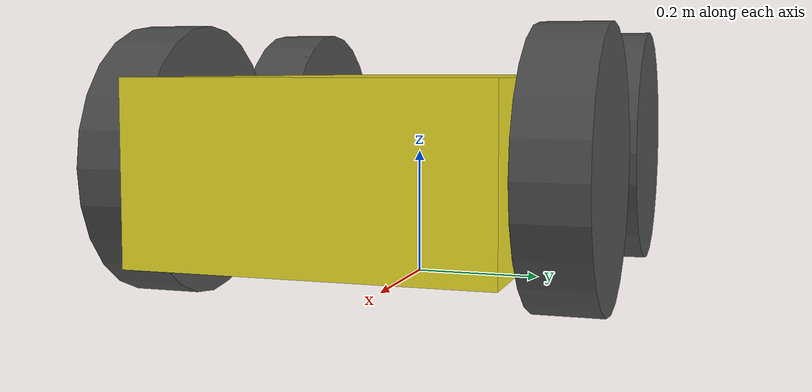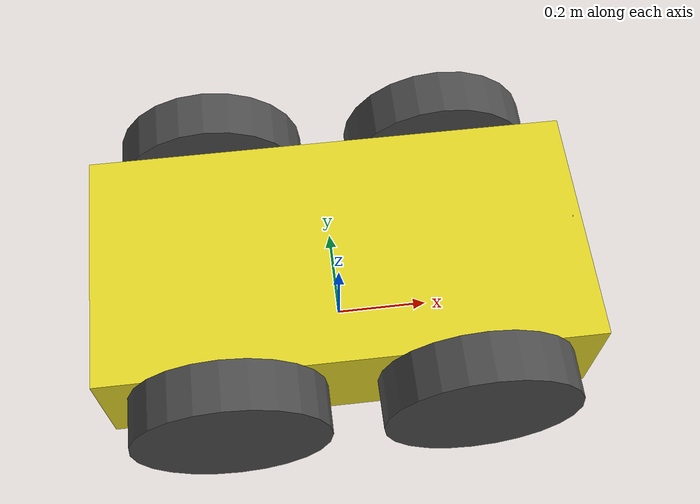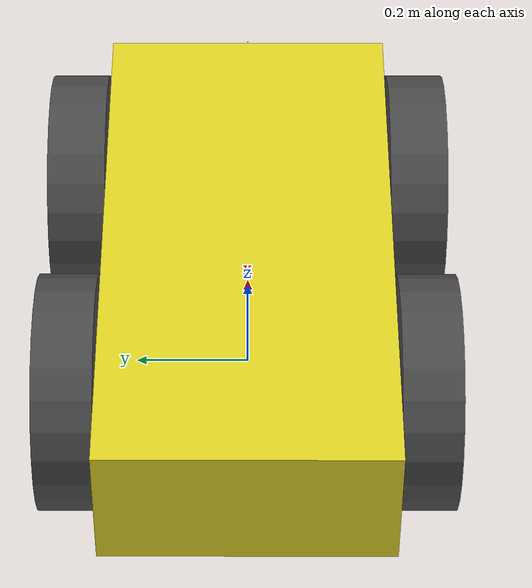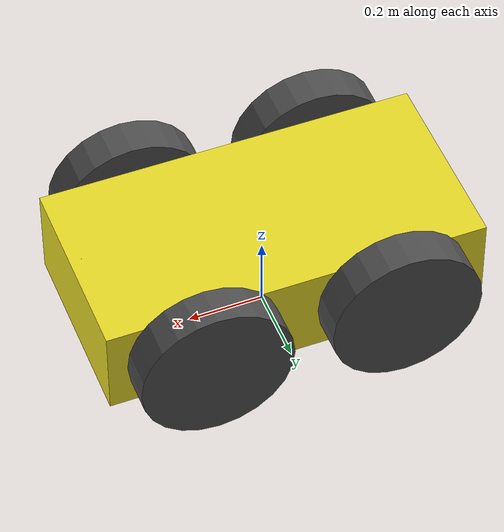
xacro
<?xml version="1.0"?>
<robot name="labrob" xmlns:xacro="http://www.ros.org/wiki/xacro">

  <!-- Included URDF/XACRO Files -->
  <xacro:include filename="$(find labrob_description)/urdf/materials.urdf.xacro" />
  <xacro:include filename="$(find labrob_description)/urdf/wheel.urdf.xacro" />
  <xacro:include filename="$(find labrob_description)/urdf/kinect_camera.urdf.xacro" />

  <!-- PROPERTY LIST -->
  <!--All units in m-kg-s-radians unit system -->
  <property name="M_PI" value="3.1415926535897931" />

  <!-- Main Body-base -->
  <property name="base_x_size" value="1.0" />
  <property name="base_y_size" value="0.5" />
  <property name="base_z_size" value="0.25" />
  <property name="base_mass" value="35" /> <!-- in kg-->

  <!--Camera-->
  <property name="camera_link" value="0.05" /> <!-- Size of square 'camera' box -->

  <!--Inertial macros for the box and cylinder. Units are kg*m^2-->
  <macro name="box_inertia" params="m x y z">
    <inertia  ixx="${m*(y*y+z*z)/12}" ixy = "0" ixz = "0"
              iyy="${m*(x*x+z*z)/12}" iyz = "0"
              izz="${m*(x*x+z*z)/12}" />
  </macro>

  <!-- BASE-FOOTPRINT -->
  <!-- base_footprint is a fictitious link(frame) that is on the ground right below base_link origin -->
  <link name="base_footprint">
    <inertial>
      <mass value="0.0001" />
      <origin xyz="0 0 0" />
      <inertia ixx="0.0001" ixy="0.0" ixz="0.0"
          iyy="0.0001" iyz="0.0"
          izz="0.0001" />
    </inertial>
    <visual>
        <origin xyz="0 0 0" rpy="0 0 0" />
        <geometry>
            <box size="0.001 0.001 0.001" />
        </geometry>
    </visual>
  </link>

  <gazebo reference="base_footprint">
    <turnGravityOff>false</turnGravityOff>
  </gazebo>

  <joint name="base_footprint_joint" type="fixed">
  <origin xyz="0 0 ${wheel_radius - base_z_origin_to_wheel_origin}" rpy="0 0 0" />
    <parent link="base_footprint"/>
    <child link="base_link" />
  </joint>

  <!-- BASE-LINK -->
  <!--Actual body/chassis of the robot-->
  <link name="base_link">
    <inertial>
      <mass value="${base_mass}" />
      <origin xyz="0 0 0" />
      <!--The 3x3 rotational inertia matrix. -->
      <box_inertia  m="${base_mass}" x="${base_x_size}" y="${base_y_size}" z="${base_z_size}"/>
    </inertial>
    <visual>
      <origin xyz="0 0 0" rpy="0 0 0" />
      <geometry>
        <box size="1 0.5 0.25"/>
      </geometry>
      <material name="Yellow" />
    </visual>
    <collision>
      <origin xyz="0 0 0" rpy="0 0 0 " />
      <geometry>
        <box size="1 0.5 0.25"/>
      </geometry>
    </collision>
  </link>
  <gazebo reference="base_link">
    <material>Gazebo/Yellow</material>
    <turnGravityOff>false</turnGravityOff>
  </gazebo>

  <!-- WHEELs -->
  <wheel fb="front" lr="right" parent="base_link" translateX="1" translateY="-1" flipY="-1"/>
  <wheel fb="front" lr="left" parent="base_link" translateX="1" translateY="1" flipY="-1"/>
  <wheel fb="back" lr="right" parent="base_link" translateX="-1" translateY="-1" flipY="-1"/>
  <wheel fb="back" lr="left" parent="base_link" translateX="-1" translateY="1" flipY="-1"/>

  <gazebo>
    <plugin name="skid_steer_drive_controller" filename="libgazebo_ros_skid_steer_drive.so">
      <alwaysOn>true</alwaysOn>
      <updateRate>100.0</updateRate>
      <leftFrontJoint>front_left_wheel_joint</leftFrontJoint>
      <rightFrontJoint>front_right_wheel_joint</rightFrontJoint>
      <leftRearJoint>back_left_wheel_joint</leftRearJoint>
      <rightRearJoint>back_right_wheel_joint</rightRearJoint>
      <wheelSeparation>${base_y_size}</wheelSeparation>
      <wheelDiameter>${2*wheel_radius}</wheelDiameter>
      <covariance_x>0.000100</covariance_x>
      <covariance_y>0.000100</covariance_y>
      <covariance_yaw>0.010000</covariance_yaw>
      <torque>35</torque>
      <broadcastTF>1</broadcastTF>
      <odometryFrame>map</odometryFrame>
      <commandTopic>cmd_vel</commandTopic>
      <odometryTopic>odom</odometryTopic>
      <robotBaseFrame>base_footprint</robotBaseFrame>
    </plugin>
    <plugin name="gazebo_ros_control" filename="libgazebo_ros_control.so" />
  </gazebo>

  <!-- Camera -->
          <!-- Noise is sampled independently per pixel on each frame.
               That pixel's noise value is added to each of its color
               channels, which at that point lie in the range [0,1]. -->

  <kinect_camera name="kinect" parent="base_link">
    <origin xyz="${base_x_size/2-camera_link/2} 0 ${base_z_size/2 + camera_link/2}" rpy="0 0 0"/>
  </kinect_camera>

</robot>

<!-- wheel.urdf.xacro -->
<robot name="wheel" xmlns:xacro="http://www.ros.org/wiki/xacro">

  <!-- Wheels -->
  <property name="wheel_radius" value="0.2" />
  <property name="wheel_height" value="0.1" />
  <property name="wheel_mass" value="2.5" /> <!-- in kg-->

  <property name="base_x_origin_to_wheel_origin" value="0.25" />
  <property name="base_y_origin_to_wheel_origin" value="0.3" />
  <property name="base_z_origin_to_wheel_origin" value="0.0" />

  <macro name="cylinder_inertia" params="m r h">
    <inertia  ixx="${m*(3*r*r+h*h)/12}" ixy = "0" ixz = "0"
              iyy="${m*(3*r*r+h*h)/12}" iyz = "0"
              izz="${m*r*r/2}" />
  </macro>

  <xacro:macro name="wheel" params="fb lr parent translateX translateY flipY"> <!--fb : front, back ; lr: left, right -->
    <link name="${fb}_${lr}_wheel">
      <visual>
        <origin xyz="0 0 0" rpy="${flipY*M_PI/2} 0 0" />
        <geometry>
          <cylinder length="${wheel_height}" radius="${wheel_radius}" />
        </geometry>
        <material name="DarkGray" />
      </visual>
      <collision>
        <origin xyz="0 0 0" rpy="${flipY*M_PI/2} 0 0" />
        <geometry>
          <cylinder length="${wheel_height}" radius="${wheel_radius}" />
        </geometry>
      </collision>
      <inertial>
        <mass value="${wheel_mass}" />
        <origin xyz="0 0 0" />
        <cylinder_inertia  m="${wheel_mass}" r="${wheel_radius}" h="${wheel_height}" />
      </inertial>
    </link>

    <gazebo reference="${fb}_${lr}_wheel">
      <mu1 value="1.0"/>
      <mu2 value="1.0"/>
      <kp  value="10000000.0" />
      <kd  value="1.0" />
      <fdir1 value="1 0 0"/>
      <material>Gazebo/Grey</material>
      <turnGravityOff>false</turnGravityOff>
    </gazebo>

    <joint name="${fb}_${lr}_wheel_joint" type="continuous">
      <parent link="${parent}"/>
      <child link="${fb}_${lr}_wheel"/>
      <origin xyz="${translateX * base_x_origin_to_wheel_origin} ${translateY * base_y_origin_to_wheel_origin} ${base_z_origin_to_wheel_origin}" rpy="0 0 0" />
      <axis xyz="0 1 0" rpy="0 0 0" />
      <limit effort="100" velocity="100"/>
      <joint_properties damping="0.0" friction="0.0"/>
    </joint>

    <!-- Transmission is important to link the joints and the controller -->
    <transmission name="${fb}_${lr}_wheel_joint_trans">
      <type>transmission_interface/SimpleTransmission</type>
      <joint name="${fb}_${lr}_wheel_joint">
        <hardwareInterface>EffortJointInterface</hardwareInterface>
      </joint>
      <actuator name="${fb}_${lr}_wheel_joint_motor">
        <mechanicalReduction>1</mechanicalReduction>
      </actuator>
    </transmission>

  </xacro:macro>
</robot>

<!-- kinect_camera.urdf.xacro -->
<robot xmlns:xacro="http://ros.org/wiki/xacro">
    <xacro:property name="M_PI" value="3.1415926535897931" />

    <xacro:macro name="kinect_camera_model" params="name parent *origin">
      <joint name="${name}_joint" type="fixed">
        <xacro:insert_block name="origin" />
        <parent link="${parent}"/>
        <child link="${name}_link"/>
      </joint>

      <link name="${name}_link">
        <inertial_sphere mass="0.01" diameter="0.07" />
        <visual>
          <origin xyz="0 0 0" rpy="0 0 0" />
          <geometry>
            <mesh filename="package://hector_sensors_description/meshes/kinect_camera/kinect_camera_simple.dae"/>
          </geometry>
        </visual>
        <collision>
          <origin xyz="0 0 0" rpy="0 0 0" />
          <geometry>
            <mesh filename="package://hector_sensors_description/meshes/kinect_camera/kinect_camera_simple.stl"/>
          </geometry>
        </collision>
      </link>

      <joint name="${name}_depth_joint" type="fixed">
        <origin xyz="0.0 -0.02 0.0" rpy="0 0 0" />
        <parent link="${name}_link" />
        <child link="${name}_depth_frame"/>
      </joint>

      <link name="${name}_depth_frame"/>

      <joint name="${name}_depth_optical_joint" type="fixed">
        <origin xyz="0 0 0" rpy="${-M_PI/2} 0.0 ${-M_PI/2}" />
        <parent link="${name}_depth_frame" />
        <child link="${name}_depth_optical_frame"/>
      </joint>

      <link name="${name}_depth_optical_frame"/>

      <joint name="${name}_rgb_joint" type="fixed">
        <origin xyz="0.0 -0.0125 0.0" rpy="0 0 0" />
        <parent link="${name}_link" />
        <child link="${name}_rgb_frame"/>
      </joint>

      <link name="${name}_rgb_frame"/>

      <joint name="${name}_rgb_optical_joint" type="fixed">
        <origin xyz="0 0 0" rpy="${-M_PI/2} 0.0 ${-M_PI/2}" />
        <parent link="${name}_rgb_frame" />
        <child link="${name}_rgb_optical_frame"/>
      </joint>

      <link name="${name}_rgb_optical_frame"/>

    </xacro:macro>

    <xacro:macro name="kinect_camera" params="name parent *origin">
      <xacro:kinect_camera_model name="${name}" parent="${parent}">
        <xacro:insert_block name="origin" />
      </xacro:kinect_camera_model>

      <gazebo reference="${name}_depth_frame">
        <sensor type="depth" name="${name}">
          <update_rate>20</update_rate>
          <camera name="${name}">
            <horizontal_fov>${60 * M_PI/180.0}</horizontal_fov>
            <image>
              <format>R8G8B8</format>
              <width>640</width>
              <height>480</height>
            </image>
            <clip>
              <near>0.05</near>
              <far>3</far>
            </clip>
          </camera>
          <plugin name="${name}_camera_controller" filename="libgazebo_ros_openni_kinect.so">
            <alwaysOn>true</alwaysOn>
            <updateRate>20</updateRate>
            <imageTopicName>${name}/rgb/image_raw</imageTopicName>
            <cameraInfoTopicName>${name}/rgb/camera_info</cameraInfoTopicName>
            <depthImageTopicName>${name}/depth/image_raw</depthImageTopicName>
            <depthImageCameraInfoTopicName>${name}/depth/camera_info</depthImageCameraInfoTopicName>
            <pointCloudTopicName>${name}/depth/points</pointCloudTopicName>
            <frameName>${name}_depth_optical_frame</frameName>
            <distortion_k1>0.0</distortion_k1>
            <distortion_k2>0.0</distortion_k2>
            <distortion_k3>0.0</distortion_k3>
            <distortion_t1>0.0</distortion_t1>
            <distortion_t2>0.0</distortion_t2>
          </plugin>
        </sensor>
      </gazebo>
    </xacro:macro>
</robot>
